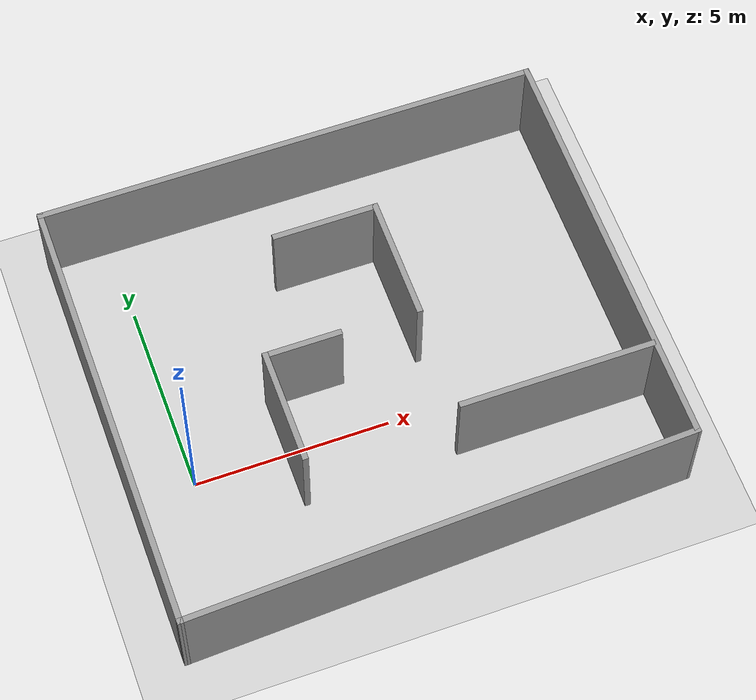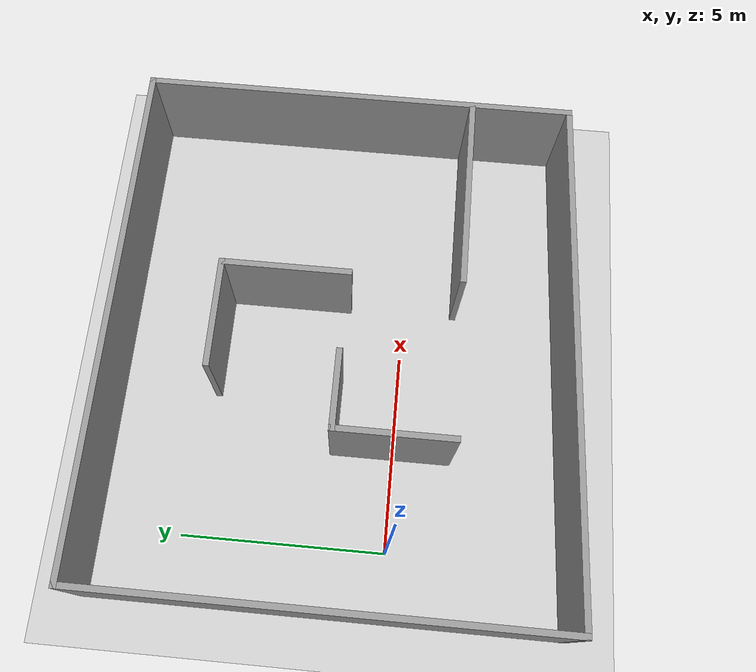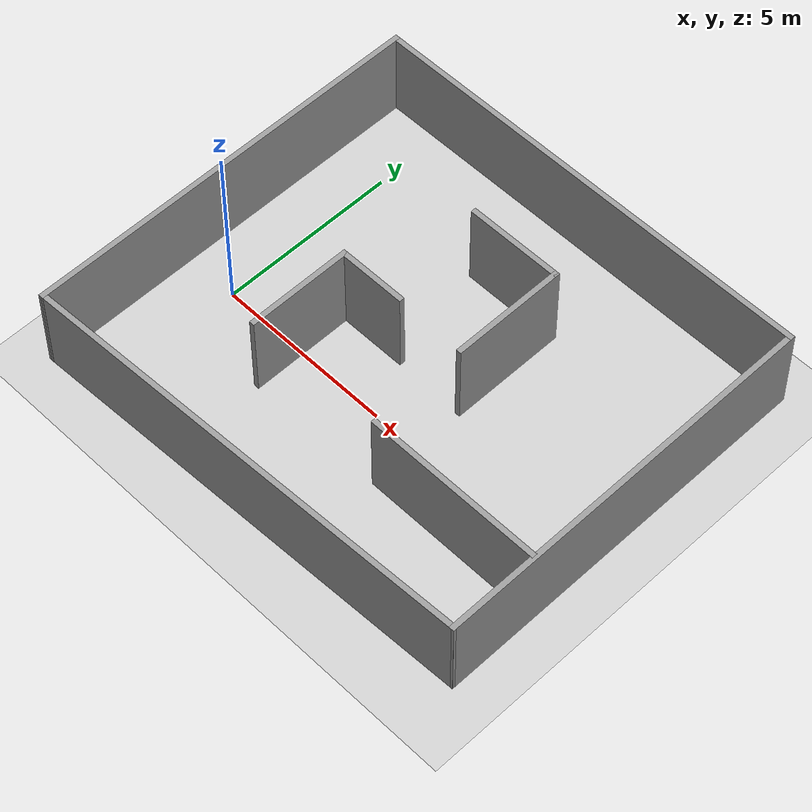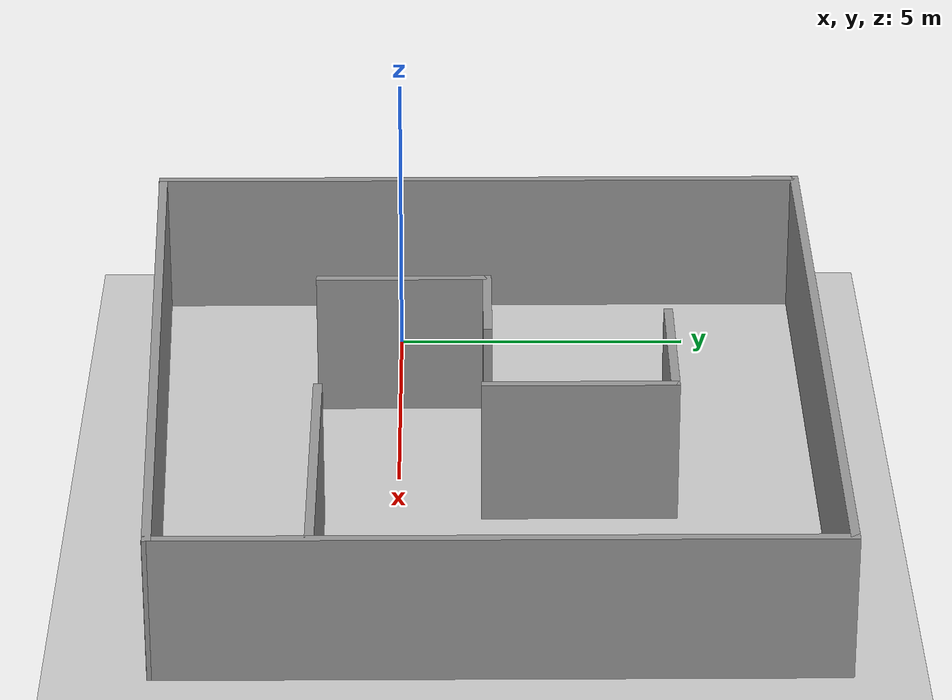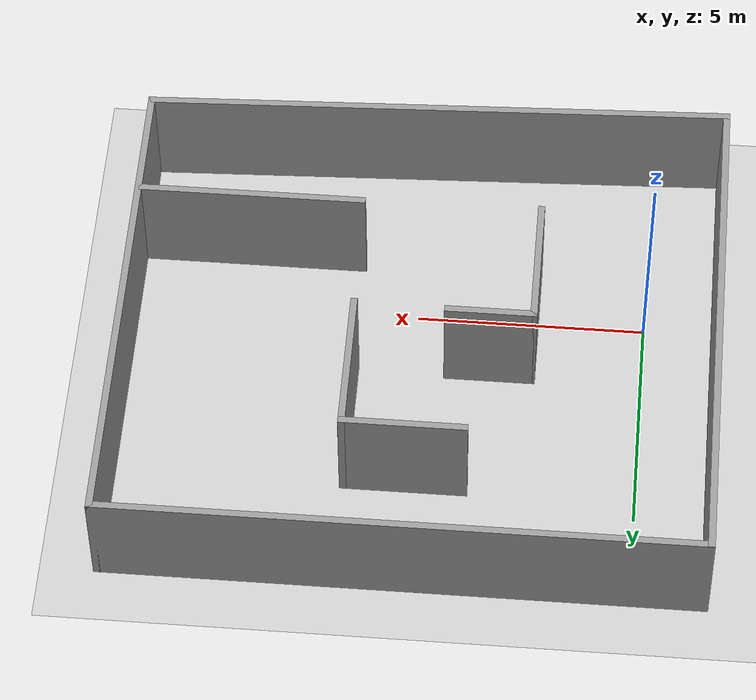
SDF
<sdf version="1.6">
 <world name="default">
  <light name="sun" type="directional">
   <pose>0 0 10 0 -0 0</pose>
   <diffuse>0.8 0.8 0.8 1</diffuse>
   <specular>0.1 0.1 0.1 1</specular>
   <attenuation>
    <range>1000</range>
    <constant>0.9</constant>
    <linear>0.01</linear>
    <quadratic>0.001</quadratic>
   </attenuation>
   <direction>-0.5 0.5 -1</direction>
  </light>
  <model name="ground_plane">
   <static>1</static>
   <link name="link">
    <collision name="collision">
     <geometry><plane><normal>0 0 1</normal><size>100 100</size></plane></geometry>
     <surface><friction><ode><mu>100</mu><mu2>50</mu2></ode></friction></surface>
    </collision>
    <visual name="visual">
     <cast_shadows>0</cast_shadows>
     <geometry><plane><normal>0 0 1</normal><size>100 100</size></plane></geometry>
     <material>
      <script><uri>file://media/materials/scripts/gazebo.material</uri><name>Gazebo/Grey</name></script>
     </material>
    </visual>
   </link>
  </model>
  <gravity>0 0 -9.8</gravity>
  <magnetic_field>6e-06 2.3e-05 -4.2e-05</magnetic_field>
  <atmosphere type="adiabatic"/>
  <physics name="default_physics" default="0" type="ode">
   <max_step_size>0.001</max_step_size>
   <real_time_factor>1</real_time_factor>
   <real_time_update_rate>1000</real_time_update_rate>
  </physics>
  <scene><ambient>0.4 0.4 0.4 1</ambient><background>0.7 0.7 0.7 1</background><shadows>1</shadows></scene>
  <spherical_coordinates>
   <surface_model>EARTH_WGS84</surface_model>
   <latitude_deg>0</latitude_deg>
   <longitude_deg>0</longitude_deg>
   <elevation>0</elevation>
   <heading_deg>0</heading_deg>
  </spherical_coordinates>
  <model name="buiding23">
   <pose>4.855 1.38357 0 0 -0 0</pose>
   <link name="Wall_0">
    <collision name="Wall_0_Collision">
     <geometry><box><size>11.5 0.15 2.5</size></box></geometry>
     <pose>0 0 1.25 0 -0 0</pose>
    </collision>
    <visual name="Wall_0_Visual">
     <pose>0 0 1.25 0 -0 0</pose>
     <geometry><box><size>11.5 0.15 2.5</size></box></geometry>
     <material>
      <script><uri>file://media/materials/scripts/gazebo.material</uri><name>Gazebo/Grey</name></script>
      <ambient>1 1 1 1</ambient>
     </material>
    </visual>
    <pose>-6.425 0.00143 0 0 -0 1.5708</pose>
   </link>
   <link name="Wall_1">
    <collision name="Wall_1_Collision">
     <geometry><box><size>13 0.15 2.5</size></box></geometry>
     <pose>0 0 1.25 0 -0 0</pose>
    </collision>
    <visual name="Wall_1_Visual">
     <pose>0 0 1.25 0 -0 0</pose>
     <geometry><box><size>13 0.15 2.5</size></box></geometry>
     <material>
      <script><uri>file://media/materials/scripts/gazebo.material</uri><name>Gazebo/Grey</name></script>
      <ambient>1 1 1 1</ambient>
     </material>
    </visual>
    <pose>0 5.67643 0 0 -0 0</pose>
   </link>
   <link name="Wall_11">
    <collision name="Wall_11_Collision">
     <geometry><box><size>5 0.15 2.5</size></box></geometry>
     <pose>0 0 1.25 0 -0 0</pose>
    </collision>
    <visual name="Wall_11_Visual">
     <pose>0 0 1.25 0 -0 0</pose>
     <geometry><box><size>5 0.15 2.5</size></box></geometry>
     <material>
      <script><uri>file://media/materials/scripts/gazebo.material</uri><name>Gazebo/Grey</name></script>
      <ambient>1 1 1 1</ambient>
     </material>
    </visual>
    <pose>3.90923 -2.68637 0 0 -0 0</pose>
   </link>
   <link name="Wall_2">
    <collision name="Wall_2_Collision">
     <geometry><box><size>11 0.15 2.5</size></box></geometry>
     <pose>0 0 1.25 0 -0 0</pose>
    </collision>
    <visual name="Wall_2_Visual">
     <pose>0 0 1.25 0 -0 0</pose>
     <geometry><box><size>11 0.15 2.5</size></box></geometry>
     <material>
      <script><uri>file://media/materials/scripts/gazebo.material</uri><name>Gazebo/Grey</name></script>
      <ambient>1 1 1 1</ambient>
     </material>
    </visual>
    <pose>6.425 0.25143 0 0 0 -1.5708</pose>
   </link>
   <link name="Wall_3">
    <collision name="Wall_3_Collision">
     <geometry><box><size>13.0097 0.15 2.5</size></box></geometry>
     <pose>0 0 1.25 0 -0 0</pose>
    </collision>
    <visual name="Wall_3_Visual">
     <pose>0 0 1.25 0 -0 0</pose>
     <geometry><box><size>13.0097 0.15 2.5</size></box></geometry>
     <material>
      <script><uri>file://media/materials/scripts/gazebo.material</uri><name>Gazebo/Grey</name></script>
      <ambient>1 1 1 1</ambient>
     </material>
    </visual>
    <pose>0 -5.42357 0 0 0 -3.1027</pose>
   </link>
   <link name="Wall_5">
    <collision name="Wall_5_Collision">
     <geometry><box><size>3 0.15 2.5</size></box></geometry>
     <pose>0 0 1.25 0 -0 0</pose>
    </collision>
    <visual name="Wall_5_Visual">
     <pose>0 0 1.25 0 -0 0</pose>
     <geometry><box><size>3 0.15 2.5</size></box></geometry>
     <material>
      <script><uri>file://media/materials/scripts/gazebo.material</uri><name>Gazebo/Grey</name></script>
      <ambient>1 1 1 1</ambient>
     </material>
    </visual>
    <pose>-2.4526 -1.31457 0 0 -0 1.5708</pose>
   </link>
   <link name="Wall_6">
    <collision name="Wall_6_Collision">
     <geometry><box><size>2 0.15 2.5</size></box></geometry>
     <pose>0 0 1.25 0 -0 0</pose>
    </collision>
    <visual name="Wall_6_Visual">
     <pose>0 0 1.25 0 -0 0</pose>
     <geometry><box><size>2 0.15 2.5</size></box></geometry>
     <material>
      <script><uri>file://media/materials/scripts/gazebo.material</uri><name>Gazebo/Grey</name></script>
      <ambient>1 1 1 1</ambient>
     </material>
    </visual>
    <pose>-1.5276 0.110428 0 0 -0 0</pose>
   </link>
   <link name="Wall_8">
    <collision name="Wall_8_Collision">
     <geometry><box><size>2.75 0.15 2.5</size></box></geometry>
     <pose>0 0 1.25 0 -0 0</pose>
    </collision>
    <visual name="Wall_8_Visual">
     <pose>0 0 1.25 0 -0 0</pose>
     <geometry><box><size>2.75 0.15 2.5</size></box></geometry>
     <material>
      <script><uri>file://media/materials/scripts/gazebo.material</uri><name>Gazebo/Grey</name></script>
      <ambient>1 1 1 1</ambient>
     </material>
    </visual>
    <pose>0.124213 3.16567 0 0 -0 0</pose>
   </link>
   <link name="Wall_9">
    <collision name="Wall_9_Collision">
     <geometry><box><size>3.25 0.15 2.5</size></box></geometry>
     <pose>0 0 1.25 0 -0 0</pose>
    </collision>
    <visual name="Wall_9_Visual">
     <pose>0 0 1.25 0 -0 0</pose>
     <geometry><box><size>3.25 0.15 2.5</size></box></geometry>
     <material>
      <script><uri>file://media/materials/scripts/gazebo.material</uri><name>Gazebo/Grey</name></script>
      <ambient>1 1 1 1</ambient>
     </material>
    </visual>
    <pose>1.42421 1.61567 0 0 0 -1.5708</pose>
   </link>
   <static>1</static>
  </model>
 </world>
</sdf>
